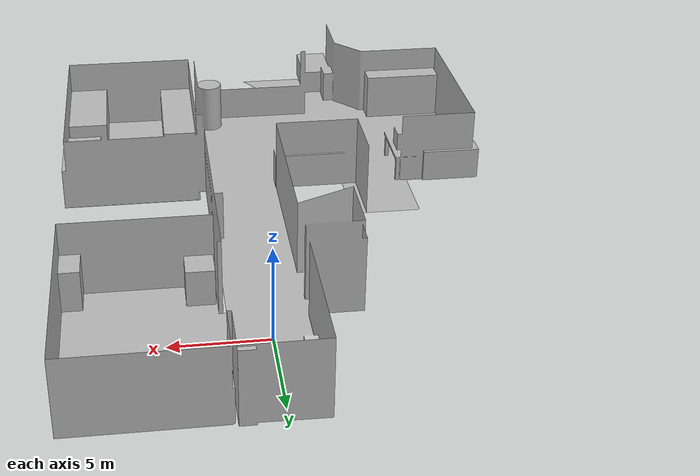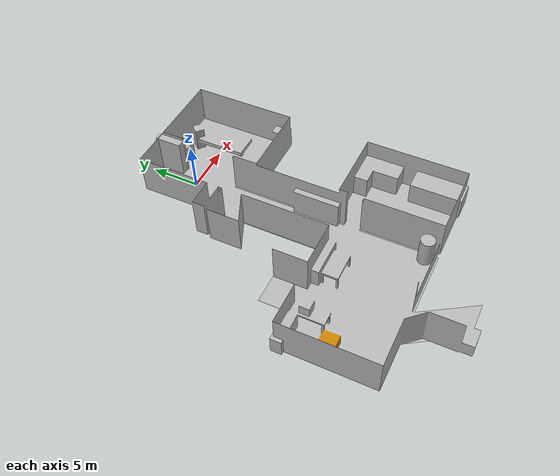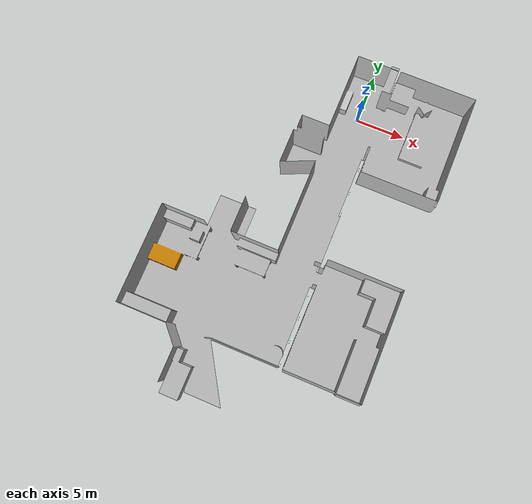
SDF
<sdf version='1.10'>
  <world name='office'>
    <physics name='1ms' type='ignored'>
      <max_step_size>0.001</max_step_size>
      <real_time_factor>1</real_time_factor>
      <real_time_update_rate>1000</real_time_update_rate>
    </physics>
    <plugin name='gz::sim::systems::Physics' filename='gz-sim-physics-system'/>
    <plugin name='gz::sim::systems::UserCommands' filename='gz-sim-user-commands-system'/>
    <plugin name='gz::sim::systems::SceneBroadcaster' filename='gz-sim-scene-broadcaster-system'/>
    <plugin name='gz::sim::systems::Sensors' filename='gz-sim-sensors-system'>
      <render_engine>ogre2</render_engine>
    </plugin>
    <plugin name='gz::sim::systems::Contact' filename='gz-sim-contact-system'/>
    <gravity>0 0 -9.8000000000000007</gravity>
    <magnetic_field>5.5644999999999998e-06 2.2875799999999999e-05 -4.2388400000000002e-05</magnetic_field>
    <atmosphere type='adiabatic'/>
    <scene>
      <ambient>0.400000006 0.400000006 0.400000006 1</ambient>
      <background>0.699999988 0.699999988 0.699999988 1</background>
      <shadows>true</shadows>
    </scene>
    <model name='office'>
      <link name='link'>
        <visual name='visual'>
          <geometry>
            <mesh>
              <uri>file:///home/ubuntu/ws/src/dynobot/dynobot_gazebo_worlds/models/office/meshes/office.dae</uri>
            </mesh>
          </geometry>
        </visual>
        <collision name='collision'>
          <geometry>
            <mesh>
              <uri>file:///home/ubuntu/ws/src/dynobot/dynobot_gazebo_worlds/models/office/meshes/office.dae</uri>
            </mesh>
          </geometry>
        </collision>
        <pose>0 0 0 0 0 0</pose>
        <inertial>
          <pose>0 0 0 0 0 0</pose>
          <mass>1</mass>
          <inertia>
            <ixx>1</ixx>
            <ixy>0</ixy>
            <ixz>0</ixz>
            <iyy>1</iyy>
            <iyz>0</iyz>
            <izz>1</izz>
          </inertia>
        </inertial>
        <enable_wind>false</enable_wind>
      </link>
      <pose>-1.5112729463448067 -12.824934589316028 0.070538665318229832 -6.2284326962317757e-06 -1.5038354086194971e-05 4.8710098928647236e-09</pose>
      <static>true</static>
      <self_collide>false</self_collide>
    </model>
    <light name='sun' type='directional'>
      <pose>0 0 10 0 0 0</pose>
      <cast_shadows>true</cast_shadows>
      <intensity>1</intensity>
      <direction>-0.5 0.10000000000000001 -0.90000000000000002</direction>
      <diffuse>0.800000012 0.800000012 0.800000012 1</diffuse>
      <specular>0.200000003 0.200000003 0.200000003 1</specular>
      <attenuation>
        <range>1000</range>
        <linear>0.01</linear>
        <constant>0.90000000000000002</constant>
        <quadratic>0.001</quadratic>
      </attenuation>
      <spot>
        <inner_angle>0</inner_angle>
        <outer_angle>0</outer_angle>
        <falloff>0</falloff>
      </spot>
    </light>
  </world>
</sdf>
